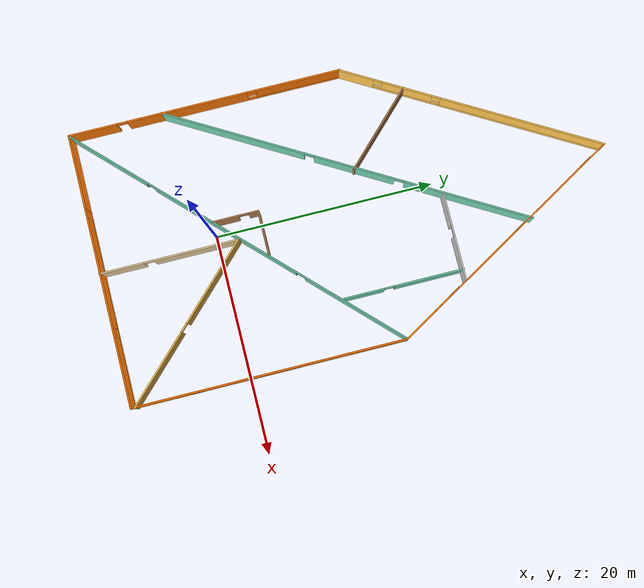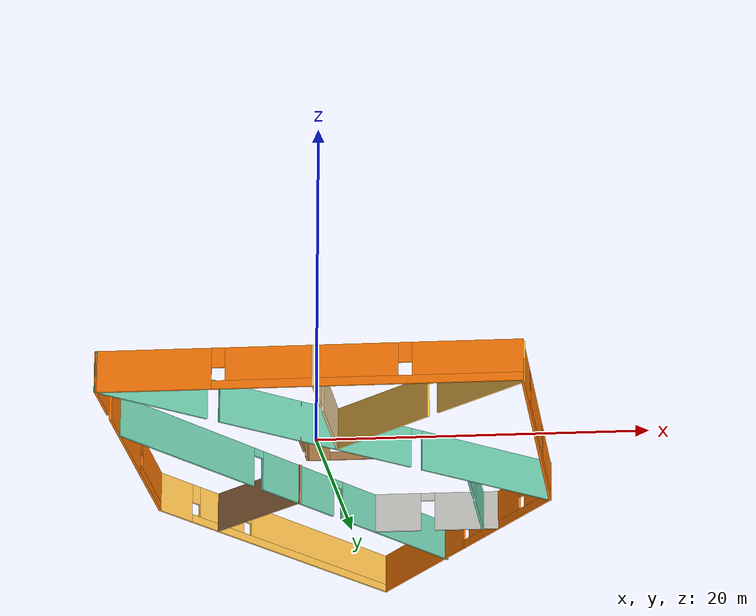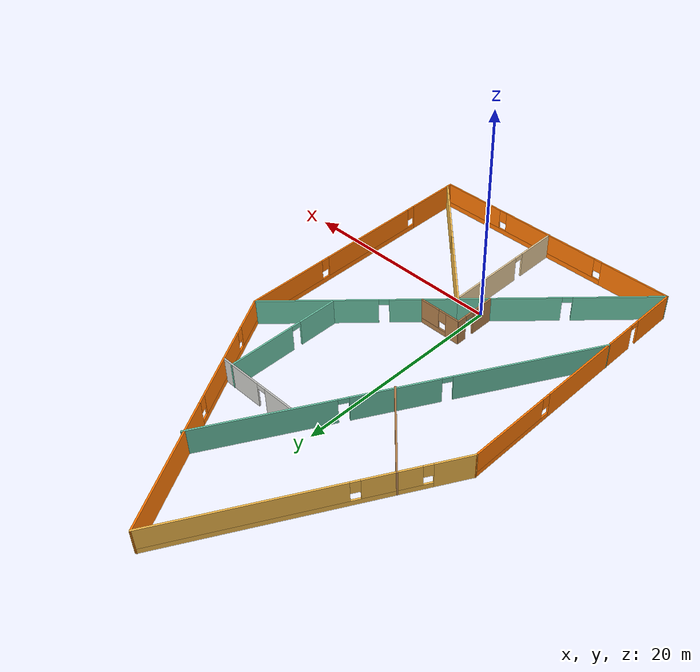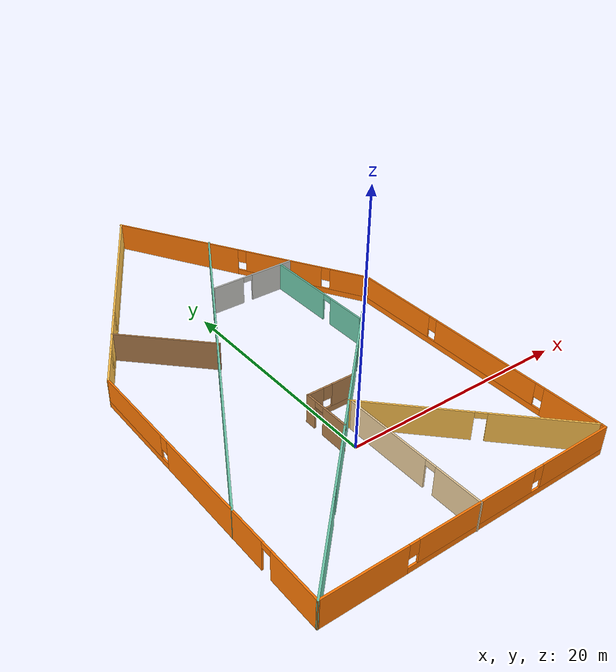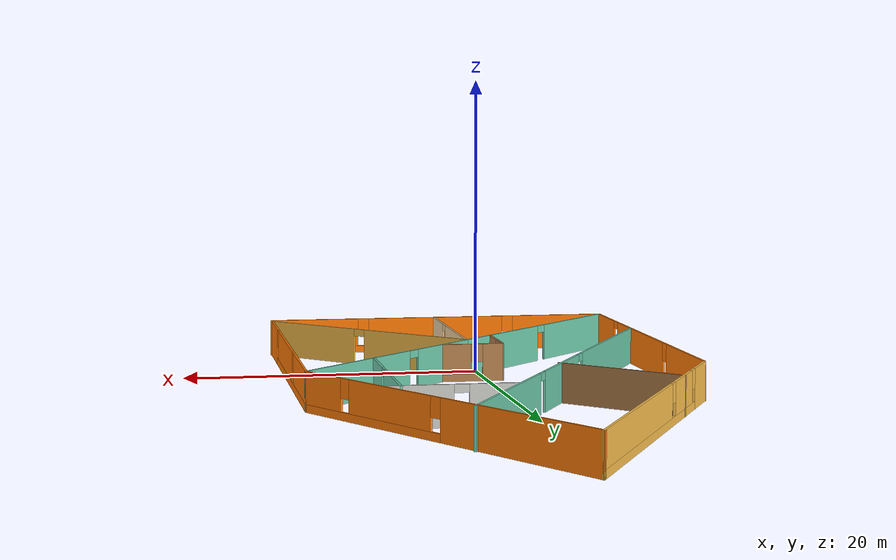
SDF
<?xml version='1.0'?>
<sdf version='1.6'>
  <model name='PentaBuilding'>
    <pose frame=''>0.763455 12.5194 0 0 -0 0</pose>
    <link name='Wall_0'>
      <pose frame=''>-0.02008 -23.0685 0 0 -0 0</pose>
      <visual name='Wall_0_Visual_0'>
        <pose frame=''>-9.07326 0 1.25 0 -0 0</pose>
        <geometry>
          <box>
            <size>6.85348 0.15 2.5</size>
          </box>
        </geometry>
        <material>
          <script>
            <uri>file://media/materials/scripts/gazebo.material</uri>
            <name>Gazebo/Grey</name>
          </script>
          <ambient>0.996078 0.47451 0.0196078 1</ambient>
        </material>
        <meta>
          <layer>0</layer>
        </meta>
      </visual>
      <collision name='Wall_0_Collision_0'>
        <geometry>
          <box>
            <size>6.85348 0.15 2.5</size>
          </box>
        </geometry>
        <pose frame=''>-9.07326 0 1.25 0 -0 0</pose>
      </collision>
      <visual name='Wall_0_Visual_1'>
        <pose frame=''>3.42674 0 0.25 0 -0 0</pose>
        <geometry>
          <box>
            <size>18.1465 0.15 0.5</size>
          </box>
        </geometry>
        <material>
          <script>
            <uri>file://media/materials/scripts/gazebo.material</uri>
            <name>Gazebo/Grey</name>
          </script>
          <ambient>0.996078 0.47451 0.0196078 1</ambient>
        </material>
        <meta>
          <layer>0</layer>
        </meta>
      </visual>
      <collision name='Wall_0_Collision_1'>
        <geometry>
          <box>
            <size>18.1465 0.15 0.5</size>
          </box>
        </geometry>
        <pose frame=''>3.42674 0 0.25 0 -0 0</pose>
      </collision>
      <visual name='Wall_0_Visual_2'>
        <pose frame=''>0.201769 0 1.5 0 -0 0</pose>
        <geometry>
          <box>
            <size>10.0966 0.15 2</size>
          </box>
        </geometry>
        <material>
          <script>
            <uri>file://media/materials/scripts/gazebo.material</uri>
            <name>Gazebo/Grey</name>
          </script>
          <ambient>0.996078 0.47451 0.0196078 1</ambient>
        </material>
        <meta>
          <layer>0</layer>
        </meta>
      </visual>
      <collision name='Wall_0_Collision_2'>
        <geometry>
          <box>
            <size>10.0966 0.15 2</size>
          </box>
        </geometry>
        <pose frame=''>0.201769 0 1.5 0 -0 0</pose>
      </collision>
      <visual name='Wall_0_Visual_3'>
        <pose frame=''>9.27503 0 1.5 0 -0 0</pose>
        <geometry>
          <box>
            <size>6.44994 0.15 2</size>
          </box>
        </geometry>
        <material>
          <script>
            <uri>file://media/materials/scripts/gazebo.material</uri>
            <name>Gazebo/Grey</name>
          </script>
          <ambient>0.996078 0.47451 0.0196078 1</ambient>
        </material>
        <meta>
          <layer>0</layer>
        </meta>
      </visual>
      <collision name='Wall_0_Collision_3'>
        <geometry>
          <box>
            <size>6.44994 0.15 2</size>
          </box>
        </geometry>
        <pose frame=''>9.27503 0 1.5 0 -0 0</pose>
      </collision>
      <visual name='Wall_0_Visual_4'>
        <pose frame=''>-5.24653 0 1.9 0 -0 0</pose>
        <geometry>
          <box>
            <size>0.8 0.15 1.2</size>
          </box>
        </geometry>
        <material>
          <script>
            <uri>file://media/materials/scripts/gazebo.material</uri>
            <name>Gazebo/Grey</name>
          </script>
          <ambient>0.996078 0.47451 0.0196078 1</ambient>
        </material>
        <meta>
          <layer>0</layer>
        </meta>
      </visual>
      <collision name='Wall_0_Collision_4'>
        <geometry>
          <box>
            <size>0.8 0.15 1.2</size>
          </box>
        </geometry>
        <pose frame=''>-5.24653 0 1.9 0 -0 0</pose>
      </collision>
      <visual name='Wall_0_Visual_5'>
        <pose frame=''>5.65006 0 1.9 0 -0 0</pose>
        <geometry>
          <box>
            <size>0.8 0.15 1.2</size>
          </box>
        </geometry>
        <material>
          <script>
            <uri>file://media/materials/scripts/gazebo.material</uri>
            <name>Gazebo/Grey</name>
          </script>
          <ambient>0.996078 0.47451 0.0196078 1</ambient>
        </material>
        <meta>
          <layer>0</layer>
        </meta>
      </visual>
      <collision name='Wall_0_Collision_5'>
        <geometry>
          <box>
            <size>0.8 0.15 1.2</size>
          </box>
        </geometry>
        <pose frame=''>5.65006 0 1.9 0 -0 0</pose>
      </collision>
    </link>
    <link name='Wall_12'>
      <pose frame=''>6.12992 12.4336 0 0 0 -1.03844</pose>
      <visual name='Wall_12_Visual_0'>
        <pose frame=''>-6.22771 0 1.25 0 -0 0</pose>
        <geometry>
          <box>
            <size>12.4205 0.15 2.5</size>
          </box>
        </geometry>
        <material>
          <script>
            <uri>file://media/materials/scripts/gazebo.material</uri>
            <name>Gazebo/Grey</name>
          </script>
          <ambient>0.996078 0.47451 0.0196078 1</ambient>
        </material>
        <meta>
          <layer>0</layer>
        </meta>
      </visual>
      <collision name='Wall_12_Collision_0'>
        <geometry>
          <box>
            <size>12.4205 0.15 2.5</size>
          </box>
        </geometry>
        <pose frame=''>-6.22771 0 1.25 0 -0 0</pose>
      </collision>
      <visual name='Wall_12_Visual_1'>
        <pose frame=''>6.21026 0 0.25 0 -0 0</pose>
        <geometry>
          <box>
            <size>12.4554 0.15 0.5</size>
          </box>
        </geometry>
        <material>
          <script>
            <uri>file://media/materials/scripts/gazebo.material</uri>
            <name>Gazebo/Grey</name>
          </script>
          <ambient>0.996078 0.47451 0.0196078 1</ambient>
        </material>
        <meta>
          <layer>0</layer>
        </meta>
      </visual>
      <collision name='Wall_12_Collision_1'>
        <geometry>
          <box>
            <size>12.4554 0.15 0.5</size>
          </box>
        </geometry>
        <pose frame=''>6.21026 0 0.25 0 -0 0</pose>
      </collision>
      <visual name='Wall_12_Visual_2'>
        <pose frame=''>4.44514 0 1.5 0 -0 0</pose>
        <geometry>
          <box>
            <size>7.3252 0.15 2</size>
          </box>
        </geometry>
        <material>
          <script>
            <uri>file://media/materials/scripts/gazebo.material</uri>
            <name>Gazebo/Grey</name>
          </script>
          <ambient>0.996078 0.47451 0.0196078 1</ambient>
        </material>
        <meta>
          <layer>0</layer>
        </meta>
      </visual>
      <collision name='Wall_12_Collision_2'>
        <geometry>
          <box>
            <size>7.3252 0.15 2</size>
          </box>
        </geometry>
        <pose frame=''>4.44514 0 1.5 0 -0 0</pose>
      </collision>
      <visual name='Wall_12_Visual_3'>
        <pose frame=''>10.6729 0 1.5 0 -0 0</pose>
        <geometry>
          <box>
            <size>3.53023 0.15 2</size>
          </box>
        </geometry>
        <material>
          <script>
            <uri>file://media/materials/scripts/gazebo.material</uri>
            <name>Gazebo/Grey</name>
          </script>
          <ambient>0.996078 0.47451 0.0196078 1</ambient>
        </material>
        <meta>
          <layer>0</layer>
        </meta>
      </visual>
      <collision name='Wall_12_Collision_3'>
        <geometry>
          <box>
            <size>3.53023 0.15 2</size>
          </box>
        </geometry>
        <pose frame=''>10.6729 0 1.5 0 -0 0</pose>
      </collision>
      <visual name='Wall_12_Visual_4'>
        <pose frame=''>0.382546 0 1.9 0 -0 0</pose>
        <geometry>
          <box>
            <size>0.8 0.15 1.2</size>
          </box>
        </geometry>
        <material>
          <script>
            <uri>file://media/materials/scripts/gazebo.material</uri>
            <name>Gazebo/Grey</name>
          </script>
          <ambient>0.996078 0.47451 0.0196078 1</ambient>
        </material>
        <meta>
          <layer>0</layer>
        </meta>
      </visual>
      <collision name='Wall_12_Collision_4'>
        <geometry>
          <box>
            <size>0.8 0.15 1.2</size>
          </box>
        </geometry>
        <pose frame=''>0.382546 0 1.9 0 -0 0</pose>
      </collision>
      <visual name='Wall_12_Visual_5'>
        <pose frame=''>8.50774 0 1.9 0 -0 0</pose>
        <geometry>
          <box>
            <size>0.8 0.15 1.2</size>
          </box>
        </geometry>
        <material>
          <script>
            <uri>file://media/materials/scripts/gazebo.material</uri>
            <name>Gazebo/Grey</name>
          </script>
          <ambient>0.996078 0.47451 0.0196078 1</ambient>
        </material>
        <meta>
          <layer>0</layer>
        </meta>
      </visual>
      <collision name='Wall_12_Collision_5'>
        <geometry>
          <box>
            <size>0.8 0.15 1.2</size>
          </box>
        </geometry>
        <pose frame=''>8.50774 0 1.9 0 -0 0</pose>
      </collision>
    </link>
    <link name='Wall_14'>
      <pose frame=''>-3.86088 0.324459 0 0 0 -2.0944</pose>
      <visual name='Wall_14_Visual_0'>
        <pose frame=''>-11.2961 0 1.25 0 -0 0</pose>
        <geometry>
          <box>
            <size>11.9079 0.15 2.5</size>
          </box>
        </geometry>
        <material>
          <script>
            <uri>file://media/materials/scripts/gazebo.material</uri>
            <name>Gazebo/Grey</name>
          </script>
          <ambient>0.435294 0.796078 0.67451 1</ambient>
        </material>
        <meta>
          <layer>0</layer>
        </meta>
      </visual>
      <collision name='Wall_14_Collision_0'>
        <geometry>
          <box>
            <size>11.9079 0.15 2.5</size>
          </box>
        </geometry>
        <pose frame=''>-11.2961 0 1.25 0 -0 0</pose>
      </collision>
      <visual name='Wall_14_Visual_1'>
        <pose frame=''>-0.710051 0 1.25 0 -0 0</pose>
        <geometry>
          <box>
            <size>7.46414 0.15 2.5</size>
          </box>
        </geometry>
        <material>
          <script>
            <uri>file://media/materials/scripts/gazebo.material</uri>
            <name>Gazebo/Grey</name>
          </script>
          <ambient>0.435294 0.796078 0.67451 1</ambient>
        </material>
        <meta>
          <layer>0</layer>
        </meta>
      </visual>
      <collision name='Wall_14_Collision_1'>
        <geometry>
          <box>
            <size>7.46414 0.15 2.5</size>
          </box>
        </geometry>
        <pose frame=''>-0.710051 0 1.25 0 -0 0</pose>
      </collision>
      <visual name='Wall_14_Visual_2'>
        <pose frame=''>10.586 0 1.25 0 -0 0</pose>
        <geometry>
          <box>
            <size>13.328 0.15 2.5</size>
          </box>
        </geometry>
        <material>
          <script>
            <uri>file://media/materials/scripts/gazebo.material</uri>
            <name>Gazebo/Grey</name>
          </script>
          <ambient>0.435294 0.796078 0.67451 1</ambient>
        </material>
        <meta>
          <layer>0</layer>
        </meta>
      </visual>
      <collision name='Wall_14_Collision_2'>
        <geometry>
          <box>
            <size>13.328 0.15 2.5</size>
          </box>
        </geometry>
        <pose frame=''>10.586 0 1.25 0 -0 0</pose>
      </collision>
      <visual name='Wall_14_Visual_3'>
        <pose frame=''>-4.89212 0 2.25 0 -0 0</pose>
        <geometry>
          <box>
            <size>0.9 0.15 0.5</size>
          </box>
        </geometry>
        <material>
          <script>
            <uri>file://media/materials/scripts/gazebo.material</uri>
            <name>Gazebo/Grey</name>
          </script>
          <ambient>0.435294 0.796078 0.67451 1</ambient>
        </material>
        <meta>
          <layer>0</layer>
        </meta>
      </visual>
      <collision name='Wall_14_Collision_3'>
        <geometry>
          <box>
            <size>0.9 0.15 0.5</size>
          </box>
        </geometry>
        <pose frame=''>-4.89212 0 2.25 0 -0 0</pose>
      </collision>
      <visual name='Wall_14_Visual_4'>
        <pose frame=''>3.47202 0 2.25 0 -0 0</pose>
        <geometry>
          <box>
            <size>0.9 0.15 0.5</size>
          </box>
        </geometry>
        <material>
          <script>
            <uri>file://media/materials/scripts/gazebo.material</uri>
            <name>Gazebo/Grey</name>
          </script>
          <ambient>0.435294 0.796078 0.67451 1</ambient>
        </material>
        <meta>
          <layer>0</layer>
        </meta>
      </visual>
      <collision name='Wall_14_Collision_4'>
        <geometry>
          <box>
            <size>0.9 0.15 0.5</size>
          </box>
        </geometry>
        <pose frame=''>3.47202 0 2.25 0 -0 0</pose>
      </collision>
    </link>
    <link name='Wall_19'>
      <pose frame=''>-6.13415 -16.7575 0 0 -0 0.785398</pose>
      <visual name='Wall_19_Visual_0'>
        <pose frame=''>-4.92143 0 1.25 0 -0 0</pose>
        <geometry>
          <box>
            <size>8.15715 0.15 2.5</size>
          </box>
        </geometry>
        <material>
          <script>
            <uri>file://media/materials/scripts/gazebo.material</uri>
            <name>Gazebo/Grey</name>
          </script>
          <ambient>0.435294 0.796078 0.67451 1</ambient>
        </material>
        <meta>
          <layer>0</layer>
        </meta>
      </visual>
      <collision name='Wall_19_Collision_0'>
        <geometry>
          <box>
            <size>8.15715 0.15 2.5</size>
          </box>
        </geometry>
        <pose frame=''>-4.92143 0 1.25 0 -0 0</pose>
      </collision>
      <visual name='Wall_19_Visual_1'>
        <pose frame=''>4.52858 0 1.25 0 -0 0</pose>
        <geometry>
          <box>
            <size>8.94285 0.15 2.5</size>
          </box>
        </geometry>
        <material>
          <script>
            <uri>file://media/materials/scripts/gazebo.material</uri>
            <name>Gazebo/Grey</name>
          </script>
          <ambient>0.435294 0.796078 0.67451 1</ambient>
        </material>
        <meta>
          <layer>0</layer>
        </meta>
      </visual>
      <collision name='Wall_19_Collision_1'>
        <geometry>
          <box>
            <size>8.94285 0.15 2.5</size>
          </box>
        </geometry>
        <pose frame=''>4.52858 0 1.25 0 -0 0</pose>
      </collision>
      <visual name='Wall_19_Visual_2'>
        <pose frame=''>-0.392849 0 2.25 0 -0 0</pose>
        <geometry>
          <box>
            <size>0.9 0.15 0.5</size>
          </box>
        </geometry>
        <material>
          <script>
            <uri>file://media/materials/scripts/gazebo.material</uri>
            <name>Gazebo/Grey</name>
          </script>
          <ambient>0.435294 0.796078 0.67451 1</ambient>
        </material>
        <meta>
          <layer>0</layer>
        </meta>
      </visual>
      <collision name='Wall_19_Collision_2'>
        <geometry>
          <box>
            <size>0.9 0.15 0.5</size>
          </box>
        </geometry>
        <pose frame=''>-0.392849 0 2.25 0 -0 0</pose>
      </collision>
    </link>
    <link name='Wall_2'>
      <pose frame=''>-12.4451 -10.6435 0 0 -0 1.5708</pose>
      <visual name='Wall_2_Visual_0'>
        <pose frame=''>-10.2534 0 1.25 0 -0 0</pose>
        <geometry>
          <box>
            <size>4.49323 0.15 2.5</size>
          </box>
        </geometry>
        <material>
          <script>
            <uri>file://media/materials/scripts/gazebo.material</uri>
            <name>Gazebo/Grey</name>
          </script>
          <ambient>0.996078 0.47451 0.0196078 1</ambient>
        </material>
        <meta>
          <layer>0</layer>
        </meta>
      </visual>
      <collision name='Wall_2_Collision_0'>
        <geometry>
          <box>
            <size>4.49323 0.15 2.5</size>
          </box>
        </geometry>
        <pose frame=''>-10.2534 0 1.25 0 -0 0</pose>
      </collision>
      <visual name='Wall_2_Visual_1'>
        <pose frame=''>-1.59171 0 1.25 0 -0 0</pose>
        <geometry>
          <box>
            <size>11.0301 0.15 2.5</size>
          </box>
        </geometry>
        <material>
          <script>
            <uri>file://media/materials/scripts/gazebo.material</uri>
            <name>Gazebo/Grey</name>
          </script>
          <ambient>0.996078 0.47451 0.0196078 1</ambient>
        </material>
        <meta>
          <layer>0</layer>
        </meta>
      </visual>
      <collision name='Wall_2_Collision_1'>
        <geometry>
          <box>
            <size>11.0301 0.15 2.5</size>
          </box>
        </geometry>
        <pose frame=''>-1.59171 0 1.25 0 -0 0</pose>
      </collision>
      <visual name='Wall_2_Visual_2'>
        <pose frame=''>8.21167 0 0.25 0 -0 0</pose>
        <geometry>
          <box>
            <size>8.57666 0.15 0.5</size>
          </box>
        </geometry>
        <material>
          <script>
            <uri>file://media/materials/scripts/gazebo.material</uri>
            <name>Gazebo/Grey</name>
          </script>
          <ambient>0.996078 0.47451 0.0196078 1</ambient>
        </material>
        <meta>
          <layer>0</layer>
        </meta>
      </visual>
      <collision name='Wall_2_Collision_2'>
        <geometry>
          <box>
            <size>8.57666 0.15 0.5</size>
          </box>
        </geometry>
        <pose frame=''>8.21167 0 0.25 0 -0 0</pose>
      </collision>
      <visual name='Wall_2_Visual_3'>
        <pose frame=''>8.61167 0 1.5 0 -0 0</pose>
        <geometry>
          <box>
            <size>7.77666 0.15 2</size>
          </box>
        </geometry>
        <material>
          <script>
            <uri>file://media/materials/scripts/gazebo.material</uri>
            <name>Gazebo/Grey</name>
          </script>
          <ambient>0.996078 0.47451 0.0196078 1</ambient>
        </material>
        <meta>
          <layer>0</layer>
        </meta>
      </visual>
      <collision name='Wall_2_Collision_3'>
        <geometry>
          <box>
            <size>7.77666 0.15 2</size>
          </box>
        </geometry>
        <pose frame=''>8.61167 0 1.5 0 -0 0</pose>
      </collision>
      <visual name='Wall_2_Visual_4'>
        <pose frame=''>4.32334 0 1.9 0 -0 0</pose>
        <geometry>
          <box>
            <size>0.8 0.15 1.2</size>
          </box>
        </geometry>
        <material>
          <script>
            <uri>file://media/materials/scripts/gazebo.material</uri>
            <name>Gazebo/Grey</name>
          </script>
          <ambient>0.996078 0.47451 0.0196078 1</ambient>
        </material>
        <meta>
          <layer>0</layer>
        </meta>
      </visual>
      <collision name='Wall_2_Collision_4'>
        <geometry>
          <box>
            <size>0.8 0.15 1.2</size>
          </box>
        </geometry>
        <pose frame=''>4.32334 0 1.9 0 -0 0</pose>
      </collision>
      <visual name='Wall_2_Visual_5'>
        <pose frame=''>-7.55677 0 2.25 0 -0 0</pose>
        <geometry>
          <box>
            <size>0.9 0.15 0.5</size>
          </box>
        </geometry>
        <material>
          <script>
            <uri>file://media/materials/scripts/gazebo.material</uri>
            <name>Gazebo/Grey</name>
          </script>
          <ambient>0.996078 0.47451 0.0196078 1</ambient>
        </material>
        <meta>
          <layer>0</layer>
        </meta>
      </visual>
      <collision name='Wall_2_Collision_5'>
        <geometry>
          <box>
            <size>0.9 0.15 0.5</size>
          </box>
        </geometry>
        <pose frame=''>-7.55677 0 2.25 0 -0 0</pose>
      </collision>
    </link>
    <link name='Wall_20'>
      <pose frame=''>6.31093 -16.5808 0 0 0 -0.785398</pose>
      <visual name='Wall_20_Visual_0'>
        <pose frame=''>-4.31801 0 1.25 0 -0 0</pose>
        <geometry>
          <box>
            <size>8.86397 0.15 2.5</size>
          </box>
        </geometry>
        <material>
          <script>
            <uri>file://media/materials/scripts/gazebo.material</uri>
            <name>Gazebo/Grey</name>
          </script>
          <ambient>1 0.764706 0.305882 1</ambient>
        </material>
        <meta>
          <layer>0</layer>
        </meta>
      </visual>
      <collision name='Wall_20_Collision_0'>
        <geometry>
          <box>
            <size>8.86397 0.15 2.5</size>
          </box>
        </geometry>
        <pose frame=''>-4.31801 0 1.25 0 -0 0</pose>
      </collision>
      <visual name='Wall_20_Visual_1'>
        <pose frame=''>4.88199 0 1.25 0 -0 0</pose>
        <geometry>
          <box>
            <size>7.73603 0.15 2.5</size>
          </box>
        </geometry>
        <material>
          <script>
            <uri>file://media/materials/scripts/gazebo.material</uri>
            <name>Gazebo/Grey</name>
          </script>
          <ambient>1 0.764706 0.305882 1</ambient>
        </material>
        <meta>
          <layer>0</layer>
        </meta>
      </visual>
      <collision name='Wall_20_Collision_1'>
        <geometry>
          <box>
            <size>7.73603 0.15 2.5</size>
          </box>
        </geometry>
        <pose frame=''>4.88199 0 1.25 0 -0 0</pose>
      </collision>
      <visual name='Wall_20_Visual_2'>
        <pose frame=''>0.563973 0 2.25 0 -0 0</pose>
        <geometry>
          <box>
            <size>0.9 0.15 0.5</size>
          </box>
        </geometry>
        <material>
          <script>
            <uri>file://media/materials/scripts/gazebo.material</uri>
            <name>Gazebo/Grey</name>
          </script>
          <ambient>1 0.764706 0.305882 1</ambient>
        </material>
        <meta>
          <layer>0</layer>
        </meta>
      </visual>
      <collision name='Wall_20_Collision_2'>
        <geometry>
          <box>
            <size>0.9 0.15 0.5</size>
          </box>
        </geometry>
        <pose frame=''>0.563973 0 2.25 0 -0 0</pose>
      </collision>
    </link>
    <link name='Wall_22'>
      <pose frame=''>6.29085 -4.33254 0 0 -0 0.785398</pose>
      <visual name='Wall_22_Visual_0'>
        <pose frame=''>-5.74362 0 1.25 0 -0 0</pose>
        <geometry>
          <box>
            <size>5.95596 0.15 2.5</size>
          </box>
        </geometry>
        <material>
          <script>
            <uri>file://media/materials/scripts/gazebo.material</uri>
            <name>Gazebo/Grey</name>
          </script>
          <ambient>0.435294 0.796078 0.67451 1</ambient>
        </material>
        <meta>
          <layer>0</layer>
        </meta>
      </visual>
      <collision name='Wall_22_Collision_0'>
        <geometry>
          <box>
            <size>5.95596 0.15 2.5</size>
          </box>
        </geometry>
        <pose frame=''>-5.74362 0 1.25 0 -0 0</pose>
      </collision>
      <visual name='Wall_22_Visual_1'>
        <pose frame=''>3.42798 0 1.25 0 -0 0</pose>
        <geometry>
          <box>
            <size>10.5872 0.15 2.5</size>
          </box>
        </geometry>
        <material>
          <script>
            <uri>file://media/materials/scripts/gazebo.material</uri>
            <name>Gazebo/Grey</name>
          </script>
          <ambient>0.435294 0.796078 0.67451 1</ambient>
        </material>
        <meta>
          <layer>0</layer>
        </meta>
      </visual>
      <collision name='Wall_22_Collision_1'>
        <geometry>
          <box>
            <size>10.5872 0.15 2.5</size>
          </box>
        </geometry>
        <pose frame=''>3.42798 0 1.25 0 -0 0</pose>
      </collision>
      <visual name='Wall_22_Visual_2'>
        <pose frame=''>-2.31564 0 2.25 0 -0 0</pose>
        <geometry>
          <box>
            <size>0.9 0.15 0.5</size>
          </box>
        </geometry>
        <material>
          <script>
            <uri>file://media/materials/scripts/gazebo.material</uri>
            <name>Gazebo/Grey</name>
          </script>
          <ambient>0.435294 0.796078 0.67451 1</ambient>
        </material>
        <meta>
          <layer>0</layer>
        </meta>
      </visual>
      <collision name='Wall_22_Collision_2'>
        <geometry>
          <box>
            <size>0.9 0.15 0.5</size>
          </box>
        </geometry>
        <pose frame=''>-2.31564 0 2.25 0 -0 0</pose>
      </collision>
    </link>
    <link name='Wall_24'>
      <pose frame=''>7.64981 2.66521 0 0 0 -1.5708</pose>
      <visual name='Wall_24_Visual_0'>
        <pose frame=''>-2.31693 0 1.25 0 -0 0</pose>
        <geometry>
          <box>
            <size>6.36613 0.15 2.5</size>
          </box>
        </geometry>
        <material>
          <script>
            <uri>file://media/materials/scripts/gazebo.material</uri>
            <name>Gazebo/Grey</name>
          </script>
          <ambient>0.435294 0.796078 0.67451 1</ambient>
        </material>
        <meta>
          <layer>0</layer>
        </meta>
      </visual>
      <collision name='Wall_24_Collision_0'>
        <geometry>
          <box>
            <size>6.36613 0.15 2.5</size>
          </box>
        </geometry>
        <pose frame=''>-2.31693 0 1.25 0 -0 0</pose>
      </collision>
      <visual name='Wall_24_Visual_1'>
        <pose frame=''>3.63307 0 1.25 0 -0 0</pose>
        <geometry>
          <box>
            <size>3.73387 0.15 2.5</size>
          </box>
        </geometry>
        <material>
          <script>
            <uri>file://media/materials/scripts/gazebo.material</uri>
            <name>Gazebo/Grey</name>
          </script>
          <ambient>0.435294 0.796078 0.67451 1</ambient>
        </material>
        <meta>
          <layer>0</layer>
        </meta>
      </visual>
      <collision name='Wall_24_Collision_1'>
        <geometry>
          <box>
            <size>3.73387 0.15 2.5</size>
          </box>
        </geometry>
        <pose frame=''>3.63307 0 1.25 0 -0 0</pose>
      </collision>
      <visual name='Wall_24_Visual_2'>
        <pose frame=''>1.31613 0 2.25 0 -0 0</pose>
        <geometry>
          <box>
            <size>0.9 0.15 0.5</size>
          </box>
        </geometry>
        <material>
          <script>
            <uri>file://media/materials/scripts/gazebo.material</uri>
            <name>Gazebo/Grey</name>
          </script>
          <ambient>0.435294 0.796078 0.67451 1</ambient>
        </material>
        <meta>
          <layer>0</layer>
        </meta>
      </visual>
      <collision name='Wall_24_Collision_2'>
        <geometry>
          <box>
            <size>0.9 0.15 0.5</size>
          </box>
        </geometry>
        <pose frame=''>1.31613 0 2.25 0 -0 0</pose>
      </collision>
    </link>
    <link name='Wall_32'>
      <collision name='Wall_32_Collision'>
        <geometry>
          <box>
            <size>8.75 0.15 2.5</size>
          </box>
        </geometry>
        <pose frame=''>0 0 1.25 0 -0 0</pose>
      </collision>
      <visual name='Wall_32_Visual'>
        <pose frame=''>0 0 1.25 0 -0 0</pose>
        <geometry>
          <box>
            <size>8.75 0.15 2.5</size>
          </box>
        </geometry>
        <material>
          <script>
            <uri>file://media/materials/scripts/gazebo.material</uri>
            <name>Gazebo/Wood</name>
          </script>
          <ambient>1 1 1 1</ambient>
        </material>
        <meta>
          <layer>0</layer>
        </meta>
      </visual>
      <pose frame=''>-6.42194 3.93991 0 0 0 -0.785398</pose>
    </link>
    <link name='Wall_4'>
      <pose frame=''>12.4049 -10.6435 0 0 -0 1.5708</pose>
      <visual name='Wall_4_Visual_0'>
        <pose frame=''>-9.80914 0 1.25 0 -0 0</pose>
        <geometry>
          <box>
            <size>5.38171 0.15 2.5</size>
          </box>
        </geometry>
        <material>
          <script>
            <uri>file://media/materials/scripts/gazebo.material</uri>
            <name>Gazebo/Grey</name>
          </script>
          <ambient>0.996078 0.47451 0.0196078 1</ambient>
        </material>
        <meta>
          <layer>0</layer>
        </meta>
      </visual>
      <collision name='Wall_4_Collision_0'>
        <geometry>
          <box>
            <size>5.38171 0.15 2.5</size>
          </box>
        </geometry>
        <pose frame=''>-9.80914 0 1.25 0 -0 0</pose>
      </collision>
      <visual name='Wall_4_Visual_1'>
        <pose frame=''>2.69086 0 0.25 0 -0 0</pose>
        <geometry>
          <box>
            <size>19.6183 0.15 0.5</size>
          </box>
        </geometry>
        <material>
          <script>
            <uri>file://media/materials/scripts/gazebo.material</uri>
            <name>Gazebo/Grey</name>
          </script>
          <ambient>0.996078 0.47451 0.0196078 1</ambient>
        </material>
        <meta>
          <layer>0</layer>
        </meta>
      </visual>
      <collision name='Wall_4_Collision_1'>
        <geometry>
          <box>
            <size>19.6183 0.15 0.5</size>
          </box>
        </geometry>
        <pose frame=''>2.69086 0 0.25 0 -0 0</pose>
      </collision>
      <visual name='Wall_4_Visual_2'>
        <pose frame=''>-1.19923 0 1.5 0 -0 0</pose>
        <geometry>
          <box>
            <size>10.2381 0.15 2</size>
          </box>
        </geometry>
        <material>
          <script>
            <uri>file://media/materials/scripts/gazebo.material</uri>
            <name>Gazebo/Grey</name>
          </script>
          <ambient>0.996078 0.47451 0.0196078 1</ambient>
        </material>
        <meta>
          <layer>0</layer>
        </meta>
      </visual>
      <collision name='Wall_4_Collision_2'>
        <geometry>
          <box>
            <size>10.2381 0.15 2</size>
          </box>
        </geometry>
        <pose frame=''>-1.19923 0 1.5 0 -0 0</pose>
      </collision>
      <visual name='Wall_4_Visual_3'>
        <pose frame=''>8.60991 0 1.5 0 -0 0</pose>
        <geometry>
          <box>
            <size>7.78018 0.15 2</size>
          </box>
        </geometry>
        <material>
          <script>
            <uri>file://media/materials/scripts/gazebo.material</uri>
            <name>Gazebo/Grey</name>
          </script>
          <ambient>0.996078 0.47451 0.0196078 1</ambient>
        </material>
        <meta>
          <layer>0</layer>
        </meta>
      </visual>
      <collision name='Wall_4_Collision_3'>
        <geometry>
          <box>
            <size>7.78018 0.15 2</size>
          </box>
        </geometry>
        <pose frame=''>8.60991 0 1.5 0 -0 0</pose>
      </collision>
      <visual name='Wall_4_Visual_4'>
        <pose frame=''>-6.71828 0 1.9 0 -0 0</pose>
        <geometry>
          <box>
            <size>0.8 0.15 1.2</size>
          </box>
        </geometry>
        <material>
          <script>
            <uri>file://media/materials/scripts/gazebo.material</uri>
            <name>Gazebo/Grey</name>
          </script>
          <ambient>0.996078 0.47451 0.0196078 1</ambient>
        </material>
        <meta>
          <layer>0</layer>
        </meta>
      </visual>
      <collision name='Wall_4_Collision_4'>
        <geometry>
          <box>
            <size>0.8 0.15 1.2</size>
          </box>
        </geometry>
        <pose frame=''>-6.71828 0 1.9 0 -0 0</pose>
      </collision>
      <visual name='Wall_4_Visual_5'>
        <pose frame=''>4.31982 0 1.9 0 -0 0</pose>
        <geometry>
          <box>
            <size>0.8 0.15 1.2</size>
          </box>
        </geometry>
        <material>
          <script>
            <uri>file://media/materials/scripts/gazebo.material</uri>
            <name>Gazebo/Grey</name>
          </script>
          <ambient>0.996078 0.47451 0.0196078 1</ambient>
        </material>
        <meta>
          <layer>0</layer>
        </meta>
      </visual>
      <collision name='Wall_4_Collision_5'>
        <geometry>
          <box>
            <size>0.8 0.15 1.2</size>
          </box>
        </geometry>
        <pose frame=''>4.31982 0 1.9 0 -0 0</pose>
      </collision>
    </link>
    <link name='Wall_56'>
      <pose frame=''>0.281685 -16.9384 0 0 0 -1.5708</pose>
      <visual name='Wall_56_Visual_0'>
        <pose frame=''>-2.4776 0 1.25 0 -0 0</pose>
        <geometry>
          <box>
            <size>7.5448 0.15 2.5</size>
          </box>
        </geometry>
        <material>
          <script>
            <uri>file://media/materials/scripts/gazebo.material</uri>
            <name>Gazebo/Grey</name>
          </script>
          <ambient>0.921569 0.807843 0.615686 1</ambient>
        </material>
        <meta>
          <layer>0</layer>
        </meta>
      </visual>
      <collision name='Wall_56_Collision_0'>
        <geometry>
          <box>
            <size>7.5448 0.15 2.5</size>
          </box>
        </geometry>
        <pose frame=''>-2.4776 0 1.25 0 -0 0</pose>
      </collision>
      <visual name='Wall_56_Visual_1'>
        <pose frame=''>4.2224 0 1.25 0 -0 0</pose>
        <geometry>
          <box>
            <size>4.0552 0.15 2.5</size>
          </box>
        </geometry>
        <material>
          <script>
            <uri>file://media/materials/scripts/gazebo.material</uri>
            <name>Gazebo/Grey</name>
          </script>
          <ambient>0.921569 0.807843 0.615686 1</ambient>
        </material>
        <meta>
          <layer>0</layer>
        </meta>
      </visual>
      <collision name='Wall_56_Collision_1'>
        <geometry>
          <box>
            <size>4.0552 0.15 2.5</size>
          </box>
        </geometry>
        <pose frame=''>4.2224 0 1.25 0 -0 0</pose>
      </collision>
      <visual name='Wall_56_Visual_2'>
        <pose frame=''>1.7448 0 2.25 0 -0 0</pose>
        <geometry>
          <box>
            <size>0.9 0.15 0.5</size>
          </box>
        </geometry>
        <material>
          <script>
            <uri>file://media/materials/scripts/gazebo.material</uri>
            <name>Gazebo/Grey</name>
          </script>
          <ambient>0.921569 0.807843 0.615686 1</ambient>
        </material>
        <meta>
          <layer>0</layer>
        </meta>
      </visual>
      <collision name='Wall_56_Collision_2'>
        <geometry>
          <box>
            <size>0.9 0.15 0.5</size>
          </box>
        </geometry>
        <pose frame=''>1.7448 0 2.25 0 -0 0</pose>
      </collision>
    </link>
    <link name='Wall_62'>
      <pose frame=''>4.70707 8.0445 0 0 -0 3.14159</pose>
      <visual name='Wall_62_Visual_0'>
        <pose frame=''>-1.92892 0 1.25 0 -0 0</pose>
        <geometry>
          <box>
            <size>4.14217 0.15 2.5</size>
          </box>
        </geometry>
        <material>
          <script>
            <uri>file://media/materials/scripts/gazebo.material</uri>
            <name>Gazebo/CeilingTiled</name>
          </script>
          <ambient>1 1 1 1</ambient>
        </material>
        <meta>
          <layer>0</layer>
        </meta>
      </visual>
      <collision name='Wall_62_Collision_0'>
        <geometry>
          <box>
            <size>4.14217 0.15 2.5</size>
          </box>
        </geometry>
        <pose frame=''>-1.92892 0 1.25 0 -0 0</pose>
      </collision>
      <visual name='Wall_62_Visual_1'>
        <pose frame=''>2.52108 0 1.25 0 -0 0</pose>
        <geometry>
          <box>
            <size>2.95784 0.15 2.5</size>
          </box>
        </geometry>
        <material>
          <script>
            <uri>file://media/materials/scripts/gazebo.material</uri>
            <name>Gazebo/CeilingTiled</name>
          </script>
          <ambient>1 1 1 1</ambient>
        </material>
        <meta>
          <layer>0</layer>
        </meta>
      </visual>
      <collision name='Wall_62_Collision_1'>
        <geometry>
          <box>
            <size>2.95784 0.15 2.5</size>
          </box>
        </geometry>
        <pose frame=''>2.52108 0 1.25 0 -0 0</pose>
      </collision>
      <visual name='Wall_62_Visual_2'>
        <pose frame=''>0.592165 0 2.25 0 -0 0</pose>
        <geometry>
          <box>
            <size>0.9 0.15 0.5</size>
          </box>
        </geometry>
        <material>
          <script>
            <uri>file://media/materials/scripts/gazebo.material</uri>
            <name>Gazebo/CeilingTiled</name>
          </script>
          <ambient>1 1 1 1</ambient>
        </material>
        <meta>
          <layer>0</layer>
        </meta>
      </visual>
      <collision name='Wall_62_Collision_2'>
        <geometry>
          <box>
            <size>0.9 0.15 0.5</size>
          </box>
        </geometry>
        <pose frame=''>0.592165 0 2.25 0 -0 0</pose>
      </collision>
    </link>
    <link name='Wall_64'>
      <pose frame=''>-1.77124 -10.3174 0 0 -0 1.5708</pose>
      <visual name='Wall_64_Visual_0'>
        <pose frame=''>-0.932284 0 1.25 0 -0 0</pose>
        <geometry>
          <box>
            <size>2.38543 0.15 2.5</size>
          </box>
        </geometry>
        <material>
          <script>
            <uri>file://media/materials/scripts/gazebo.material</uri>
            <name>Gazebo/Wood</name>
          </script>
          <ambient>1 1 1 1</ambient>
        </material>
        <meta>
          <layer>0</layer>
        </meta>
      </visual>
      <collision name='Wall_64_Collision_0'>
        <geometry>
          <box>
            <size>2.38543 0.15 2.5</size>
          </box>
        </geometry>
        <pose frame=''>-0.932284 0 1.25 0 -0 0</pose>
      </collision>
      <visual name='Wall_64_Visual_1'>
        <pose frame=''>1.64272 0 1.25 0 -0 0</pose>
        <geometry>
          <box>
            <size>0.964568 0.15 2.5</size>
          </box>
        </geometry>
        <material>
          <script>
            <uri>file://media/materials/scripts/gazebo.material</uri>
            <name>Gazebo/Wood</name>
          </script>
          <ambient>1 1 1 1</ambient>
        </material>
        <meta>
          <layer>0</layer>
        </meta>
      </visual>
      <collision name='Wall_64_Collision_1'>
        <geometry>
          <box>
            <size>0.964568 0.15 2.5</size>
          </box>
        </geometry>
        <pose frame=''>1.64272 0 1.25 0 -0 0</pose>
      </collision>
      <visual name='Wall_64_Visual_2'>
        <pose frame=''>0.710432 0 2.25 0 -0 0</pose>
        <geometry>
          <box>
            <size>0.9 0.15 0.5</size>
          </box>
        </geometry>
        <material>
          <script>
            <uri>file://media/materials/scripts/gazebo.material</uri>
            <name>Gazebo/Wood</name>
          </script>
          <ambient>1 1 1 1</ambient>
        </material>
        <meta>
          <layer>0</layer>
        </meta>
      </visual>
      <collision name='Wall_64_Collision_2'>
        <geometry>
          <box>
            <size>0.9 0.15 0.5</size>
          </box>
        </geometry>
        <pose frame=''>0.710432 0 2.25 0 -0 0</pose>
      </collision>
    </link>
    <link name='Wall_65'>
      <pose frame=''>0.295276 -8.26736 0 0 -0 0</pose>
      <visual name='Wall_65_Visual_0'>
        <pose frame=''>-1.38964 0 1.25 0 -0 0</pose>
        <geometry>
          <box>
            <size>1.36223 0.15 2.5</size>
          </box>
        </geometry>
        <material>
          <script>
            <uri>file://media/materials/scripts/gazebo.material</uri>
            <name>Gazebo/Wood</name>
          </script>
          <ambient>1 1 1 1</ambient>
        </material>
        <meta>
          <layer>0</layer>
        </meta>
      </visual>
      <collision name='Wall_65_Collision_0'>
        <geometry>
          <box>
            <size>1.36223 0.15 2.5</size>
          </box>
        </geometry>
        <pose frame=''>-1.38964 0 1.25 0 -0 0</pose>
      </collision>
      <visual name='Wall_65_Visual_1'>
        <pose frame=''>0.681115 0 0.25 0 -0 0</pose>
        <geometry>
          <box>
            <size>2.77928 0.15 0.5</size>
          </box>
        </geometry>
        <material>
          <script>
            <uri>file://media/materials/scripts/gazebo.material</uri>
            <name>Gazebo/Wood</name>
          </script>
          <ambient>1 1 1 1</ambient>
        </material>
        <meta>
          <layer>0</layer>
        </meta>
      </visual>
      <collision name='Wall_65_Collision_1'>
        <geometry>
          <box>
            <size>2.77928 0.15 0.5</size>
          </box>
        </geometry>
        <pose frame=''>0.681115 0 0.25 0 -0 0</pose>
      </collision>
      <visual name='Wall_65_Visual_2'>
        <pose frame=''>1.08112 0 1.5 0 -0 0</pose>
        <geometry>
          <box>
            <size>1.97928 0.15 2</size>
          </box>
        </geometry>
        <material>
          <script>
            <uri>file://media/materials/scripts/gazebo.material</uri>
            <name>Gazebo/Wood</name>
          </script>
          <ambient>1 1 1 1</ambient>
        </material>
        <meta>
          <layer>0</layer>
        </meta>
      </visual>
      <collision name='Wall_65_Collision_2'>
        <geometry>
          <box>
            <size>1.97928 0.15 2</size>
          </box>
        </geometry>
        <pose frame=''>1.08112 0 1.5 0 -0 0</pose>
      </collision>
      <visual name='Wall_65_Visual_3'>
        <pose frame=''>-0.308526 0 1.9 0 -0 0</pose>
        <geometry>
          <box>
            <size>0.8 0.15 1.2</size>
          </box>
        </geometry>
        <material>
          <script>
            <uri>file://media/materials/scripts/gazebo.material</uri>
            <name>Gazebo/Wood</name>
          </script>
          <ambient>1 1 1 1</ambient>
        </material>
        <meta>
          <layer>0</layer>
        </meta>
      </visual>
      <collision name='Wall_65_Collision_3'>
        <geometry>
          <box>
            <size>0.8 0.15 1.2</size>
          </box>
        </geometry>
        <pose frame=''>-0.308526 0 1.9 0 -0 0</pose>
      </collision>
    </link>
    <link name='Wall_8'>
      <pose frame=''>-6.29508 12.4336 0 0 -0 1.0472</pose>
      <visual name='Wall_8_Visual_0'>
        <pose frame=''>-10.7242 0 1.25 0 -0 0</pose>
        <geometry>
          <box>
            <size>3.30153 0.15 2.5</size>
          </box>
        </geometry>
        <material>
          <script>
            <uri>file://media/materials/scripts/gazebo.material</uri>
            <name>Gazebo/Grey</name>
          </script>
          <ambient>1 0.764706 0.305882 1</ambient>
        </material>
        <meta>
          <layer>0</layer>
        </meta>
      </visual>
      <collision name='Wall_8_Collision_0'>
        <geometry>
          <box>
            <size>3.30153 0.15 2.5</size>
          </box>
        </geometry>
        <pose frame=''>-10.7242 0 1.25 0 -0 0</pose>
      </collision>
      <visual name='Wall_8_Visual_1'>
        <pose frame=''>1.65077 0 0.25 0 -0 0</pose>
        <geometry>
          <box>
            <size>21.4485 0.15 0.5</size>
          </box>
        </geometry>
        <material>
          <script>
            <uri>file://media/materials/scripts/gazebo.material</uri>
            <name>Gazebo/Grey</name>
          </script>
          <ambient>1 0.764706 0.305882 1</ambient>
        </material>
        <meta>
          <layer>0</layer>
        </meta>
      </visual>
      <collision name='Wall_8_Collision_1'>
        <geometry>
          <box>
            <size>21.4485 0.15 0.5</size>
          </box>
        </geometry>
        <pose frame=''>1.65077 0 0.25 0 -0 0</pose>
      </collision>
      <visual name='Wall_8_Visual_2'>
        <pose frame=''>-5.96084 0 1.5 0 -0 0</pose>
        <geometry>
          <box>
            <size>4.62526 0.15 2</size>
          </box>
        </geometry>
        <material>
          <script>
            <uri>file://media/materials/scripts/gazebo.material</uri>
            <name>Gazebo/Grey</name>
          </script>
          <ambient>1 0.764706 0.305882 1</ambient>
        </material>
        <meta>
          <layer>0</layer>
        </meta>
      </visual>
      <collision name='Wall_8_Collision_2'>
        <geometry>
          <box>
            <size>4.62526 0.15 2</size>
          </box>
        </geometry>
        <pose frame=''>-5.96084 0 1.5 0 -0 0</pose>
      </collision>
      <visual name='Wall_8_Visual_3'>
        <pose frame=''>4.7634 0 1.5 0 -0 0</pose>
        <geometry>
          <box>
            <size>15.2232 0.15 2</size>
          </box>
        </geometry>
        <material>
          <script>
            <uri>file://media/materials/scripts/gazebo.material</uri>
            <name>Gazebo/Grey</name>
          </script>
          <ambient>1 0.764706 0.305882 1</ambient>
        </material>
        <meta>
          <layer>0</layer>
        </meta>
      </visual>
      <collision name='Wall_8_Collision_3'>
        <geometry>
          <box>
            <size>15.2232 0.15 2</size>
          </box>
        </geometry>
        <pose frame=''>4.7634 0 1.5 0 -0 0</pose>
      </collision>
      <visual name='Wall_8_Visual_4'>
        <pose frame=''>-8.67347 0 1.9 0 -0 0</pose>
        <geometry>
          <box>
            <size>0.8 0.15 1.2</size>
          </box>
        </geometry>
        <material>
          <script>
            <uri>file://media/materials/scripts/gazebo.material</uri>
            <name>Gazebo/Grey</name>
          </script>
          <ambient>1 0.764706 0.305882 1</ambient>
        </material>
        <meta>
          <layer>0</layer>
        </meta>
      </visual>
      <collision name='Wall_8_Collision_4'>
        <geometry>
          <box>
            <size>0.8 0.15 1.2</size>
          </box>
        </geometry>
        <pose frame=''>-8.67347 0 1.9 0 -0 0</pose>
      </collision>
      <visual name='Wall_8_Visual_5'>
        <pose frame=''>-3.24821 0 1.9 0 -0 0</pose>
        <geometry>
          <box>
            <size>0.8 0.15 1.2</size>
          </box>
        </geometry>
        <material>
          <script>
            <uri>file://media/materials/scripts/gazebo.material</uri>
            <name>Gazebo/Grey</name>
          </script>
          <ambient>1 0.764706 0.305882 1</ambient>
        </material>
        <meta>
          <layer>0</layer>
        </meta>
      </visual>
      <collision name='Wall_8_Collision_5'>
        <geometry>
          <box>
            <size>0.8 0.15 1.2</size>
          </box>
        </geometry>
        <pose frame=''>-3.24821 0 1.9 0 -0 0</pose>
      </collision>
    </link>
    <static>1</static>
  </model>
</sdf>
